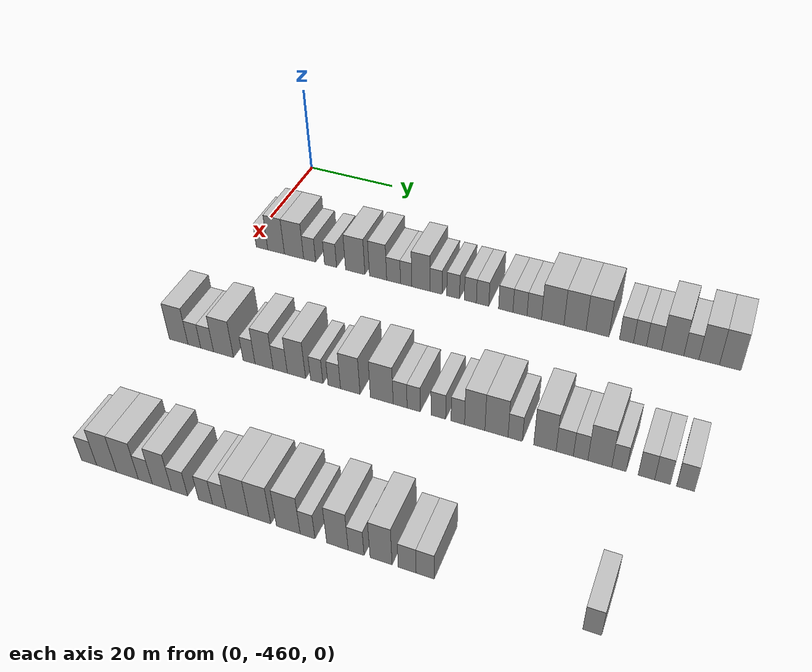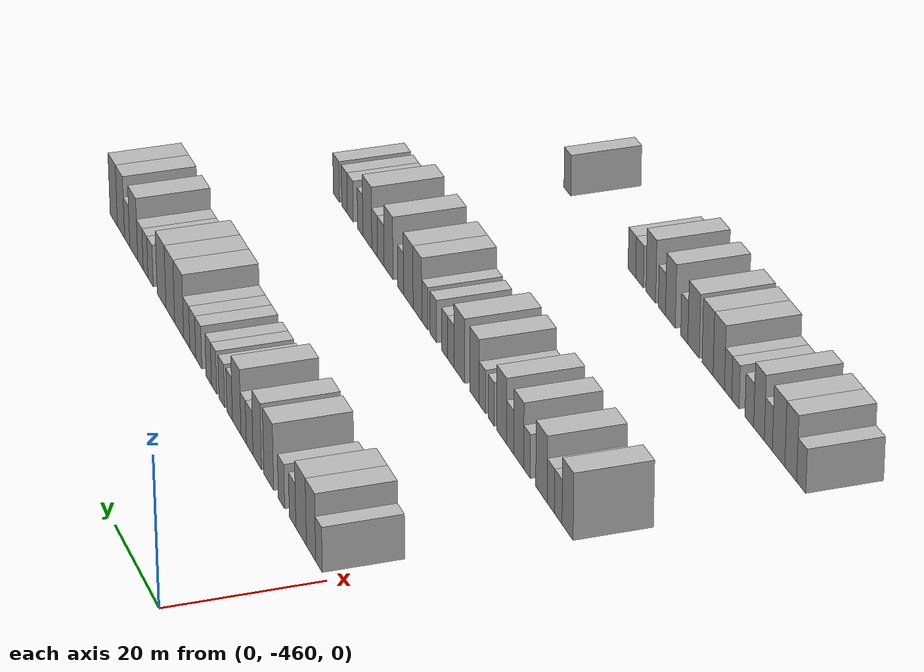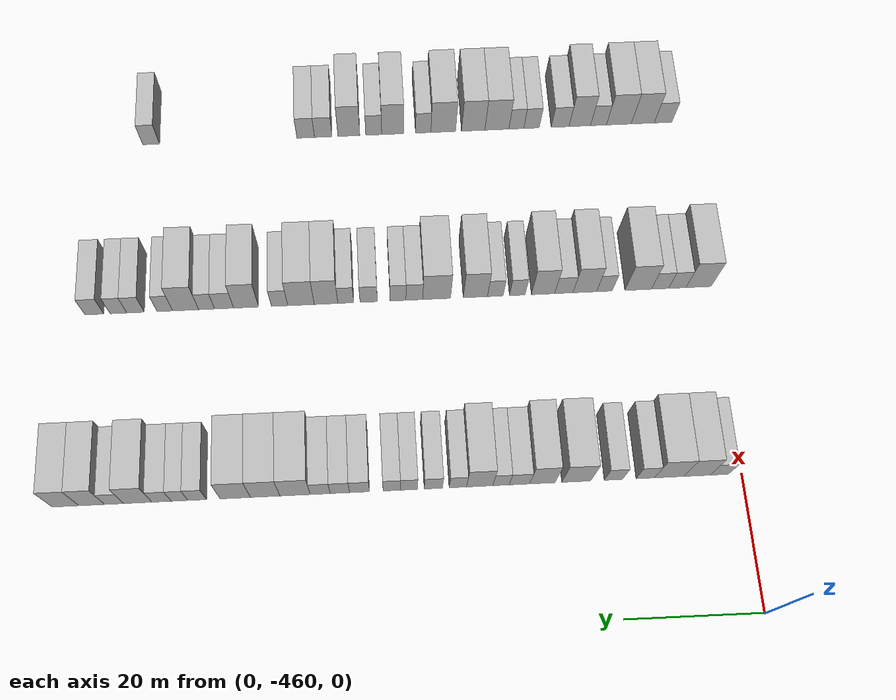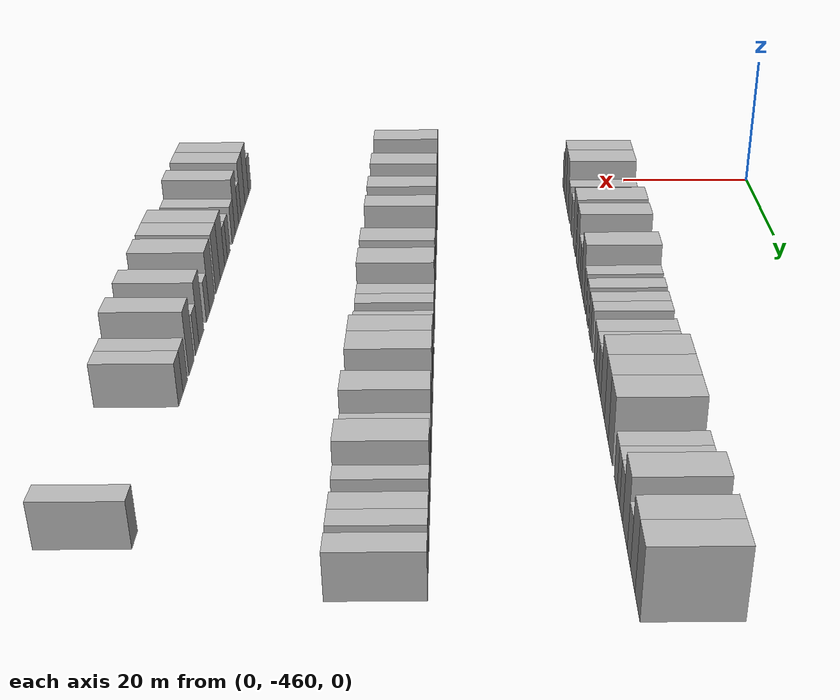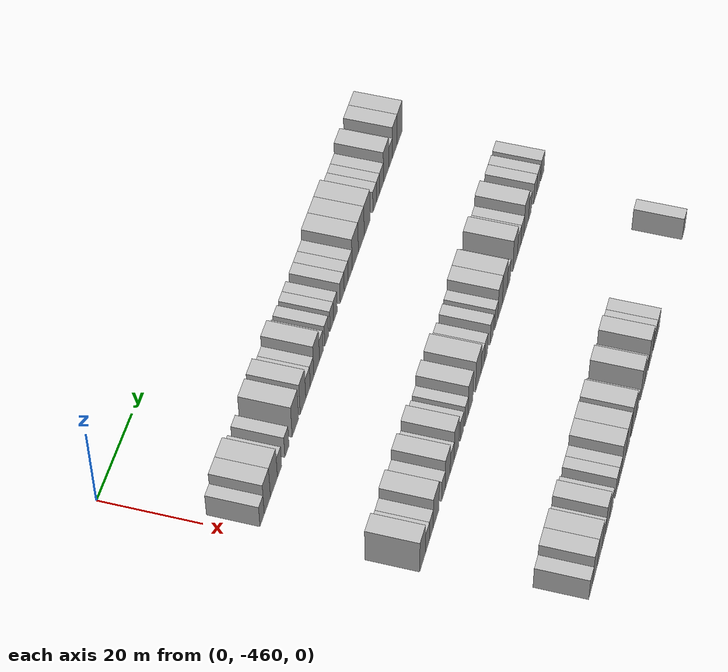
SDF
<sdf version="1.6">
 <world name="default">
  <model name="building_1">
   <static>1</static>
   <pose>25.0000 -456.6564 0 0.000000 0.000000 0.000000</pose>
   <link name="link">
    <pose>0 0 3.00 0 0 0</pose>
    <collision name="collision"><geometry><box><size>10.0000 2.6872 6.0000</size></box></geometry></collision>
    <visual name="visual">
     <cast_shadows>0</cast_shadows>
     <geometry><box><size>10.0000 2.6872 6.0000</size></box></geometry>
     <material>
      <script>
       <uri>model://HANNAS_wall/materials/scripts</uri>
       <uri>model://HANNAS_wall/materials/textures</uri>
       <name>vrc/HANNAS_wall</name>
      </script>
     </material>
    </visual>
   </link>
  </model>
  <model name="building_2">
   <static>1</static>
   <pose>25.0000 -453.3822 0 0.000000 0.000000 0.000000</pose>
   <link name="link">
    <pose>0 0 4.50 0 0 0</pose>
    <collision name="collision"><geometry><box><size>10.0000 3.8613 9.0000</size></box></geometry></collision>
    <visual name="visual">
     <cast_shadows>0</cast_shadows>
     <geometry><box><size>10.0000 3.8613 9.0000</size></box></geometry>
     <material>
      <script>
       <uri>model://HANNAS_wall/materials/scripts</uri>
       <uri>model://HANNAS_wall/materials/textures</uri>
       <name>vrc/HANNAS_wall</name>
      </script>
     </material>
    </visual>
   </link>
  </model>
  <model name="building_3">
   <static>1</static>
   <pose>25.0000 -449.2479 0 0.000000 0.000000 0.000000</pose>
   <link name="link">
    <pose>0 0 4.50 0 0 0</pose>
    <collision name="collision"><geometry><box><size>10.0000 4.4073 9.0000</size></box></geometry></collision>
    <visual name="visual">
     <cast_shadows>0</cast_shadows>
     <geometry><box><size>10.0000 4.4073 9.0000</size></box></geometry>
     <material>
      <script>
       <uri>model://HANNAS_wall/materials/scripts</uri>
       <uri>model://HANNAS_wall/materials/textures</uri>
       <name>vrc/HANNAS_wall</name>
      </script>
     </material>
    </visual>
   </link>
  </model>
  <model name="building_4">
   <static>1</static>
   <pose>25.0000 -445.6786 0 0.000000 0.000000 0.000000</pose>
   <link name="link">
    <pose>0 0 3.00 0 0 0</pose>
    <collision name="collision"><geometry><box><size>10.0000 2.7313 6.0000</size></box></geometry></collision>
    <visual name="visual">
     <cast_shadows>0</cast_shadows>
     <geometry><box><size>10.0000 2.7313 6.0000</size></box></geometry>
     <material>
      <script>
       <uri>model://HANNAS_wall/materials/scripts</uri>
       <uri>model://HANNAS_wall/materials/textures</uri>
       <name>vrc/HANNAS_wall</name>
      </script>
     </material>
    </visual>
   </link>
  </model>
  <model name="building_5">
   <static>1</static>
   <pose>25.0000 -440.9629 0 0.000000 0.000000 0.000000</pose>
   <link name="link">
    <pose>0 0 3.00 0 0 0</pose>
    <collision name="collision"><geometry><box><size>10.0000 2.7001 6.0000</size></box></geometry></collision>
    <visual name="visual">
     <cast_shadows>0</cast_shadows>
     <geometry><box><size>10.0000 2.7001 6.0000</size></box></geometry>
     <material>
      <script>
       <uri>model://HANNAS_wall/materials/scripts</uri>
       <uri>model://HANNAS_wall/materials/textures</uri>
       <name>vrc/HANNAS_wall</name>
      </script>
     </material>
    </visual>
   </link>
  </model>
  <model name="building_6">
   <static>1</static>
   <pose>25.0000 -435.4738 0 0.000000 0.000000 0.000000</pose>
   <link name="link">
    <pose>0 0 4.50 0 0 0</pose>
    <collision name="collision"><geometry><box><size>10.0000 4.2782 9.0000</size></box></geometry></collision>
    <visual name="visual">
     <cast_shadows>0</cast_shadows>
     <geometry><box><size>10.0000 4.2782 9.0000</size></box></geometry>
     <material>
      <script>
       <uri>model://HANNAS_wall/materials/scripts</uri>
       <uri>model://HANNAS_wall/materials/textures</uri>
       <name>vrc/HANNAS_wall</name>
      </script>
     </material>
    </visual>
   </link>
  </model>
  <model name="building_7">
   <static>1</static>
   <pose>25.0000 -430.4584 0 0.000000 0.000000 0.000000</pose>
   <link name="link">
    <pose>0 0 4.50 0 0 0</pose>
    <collision name="collision"><geometry><box><size>10.0000 3.7526 9.0000</size></box></geometry></collision>
    <visual name="visual">
     <cast_shadows>0</cast_shadows>
     <geometry><box><size>10.0000 3.7526 9.0000</size></box></geometry>
     <material>
      <script>
       <uri>model://HANNAS_wall/materials/scripts</uri>
       <uri>model://HANNAS_wall/materials/textures</uri>
       <name>vrc/HANNAS_wall</name>
      </script>
     </material>
    </visual>
   </link>
  </model>
  <model name="building_8">
   <static>1</static>
   <pose>25.0000 -427.0855 0 0.000000 0.000000 0.000000</pose>
   <link name="link">
    <pose>0 0 3.00 0 0 0</pose>
    <collision name="collision"><geometry><box><size>10.0000 2.9931 6.0000</size></box></geometry></collision>
    <visual name="visual">
     <cast_shadows>0</cast_shadows>
     <geometry><box><size>10.0000 2.9931 6.0000</size></box></geometry>
     <material>
      <script>
       <uri>model://HANNAS_wall/materials/scripts</uri>
       <uri>model://HANNAS_wall/materials/textures</uri>
       <name>vrc/HANNAS_wall</name>
      </script>
     </material>
    </visual>
   </link>
  </model>
  <model name="building_9">
   <static>1</static>
   <pose>25.0000 -424.3792 0 0.000000 0.000000 0.000000</pose>
   <link name="link">
    <pose>0 0 3.00 0 0 0</pose>
    <collision name="collision"><geometry><box><size>10.0000 2.4194 6.0000</size></box></geometry></collision>
    <visual name="visual">
     <cast_shadows>0</cast_shadows>
     <geometry><box><size>10.0000 2.4194 6.0000</size></box></geometry>
     <material>
      <script>
       <uri>model://HANNAS_wall/materials/scripts</uri>
       <uri>model://HANNAS_wall/materials/textures</uri>
       <name>vrc/HANNAS_wall</name>
      </script>
     </material>
    </visual>
   </link>
  </model>
  <model name="building_10">
   <static>1</static>
   <pose>25.0000 -421.2314 0 0.000000 0.000000 0.000000</pose>
   <link name="link">
    <pose>0 0 4.50 0 0 0</pose>
    <collision name="collision"><geometry><box><size>10.0000 3.8762 9.0000</size></box></geometry></collision>
    <visual name="visual">
     <cast_shadows>0</cast_shadows>
     <geometry><box><size>10.0000 3.8762 9.0000</size></box></geometry>
     <material>
      <script>
       <uri>model://HANNAS_wall/materials/scripts</uri>
       <uri>model://HANNAS_wall/materials/textures</uri>
       <name>vrc/HANNAS_wall</name>
      </script>
     </material>
    </visual>
   </link>
  </model>
  <model name="building_11">
   <static>1</static>
   <pose>25.0000 -418.0256 0 0.000000 0.000000 0.000000</pose>
   <link name="link">
    <pose>0 0 3.00 0 0 0</pose>
    <collision name="collision"><geometry><box><size>10.0000 2.5354 6.0000</size></box></geometry></collision>
    <visual name="visual">
     <cast_shadows>0</cast_shadows>
     <geometry><box><size>10.0000 2.5354 6.0000</size></box></geometry>
     <material>
      <script>
       <uri>model://HANNAS_wall/materials/scripts</uri>
       <uri>model://HANNAS_wall/materials/textures</uri>
       <name>vrc/HANNAS_wall</name>
      </script>
     </material>
    </visual>
   </link>
  </model>
  <model name="building_12">
   <static>1</static>
   <pose>25.0000 -414.4273 0 0.000000 0.000000 0.000000</pose>
   <link name="link">
    <pose>0 0 3.00 0 0 0</pose>
    <collision name="collision"><geometry><box><size>10.0000 2.6613 6.0000</size></box></geometry></collision>
    <visual name="visual">
     <cast_shadows>0</cast_shadows>
     <geometry><box><size>10.0000 2.6613 6.0000</size></box></geometry>
     <material>
      <script>
       <uri>model://HANNAS_wall/materials/scripts</uri>
       <uri>model://HANNAS_wall/materials/textures</uri>
       <name>vrc/HANNAS_wall</name>
      </script>
     </material>
    </visual>
   </link>
  </model>
  <model name="building_13">
   <static>1</static>
   <pose>25.0000 -410.8534 0 0.000000 0.000000 0.000000</pose>
   <link name="link">
    <pose>0 0 3.00 0 0 0</pose>
    <collision name="collision"><geometry><box><size>10.0000 2.4866 6.0000</size></box></geometry></collision>
    <visual name="visual">
     <cast_shadows>0</cast_shadows>
     <geometry><box><size>10.0000 2.4866 6.0000</size></box></geometry>
     <material>
      <script>
       <uri>model://HANNAS_wall/materials/scripts</uri>
       <uri>model://HANNAS_wall/materials/textures</uri>
       <name>vrc/HANNAS_wall</name>
      </script>
     </material>
    </visual>
   </link>
  </model>
  <model name="building_14">
   <static>1</static>
   <pose>25.0000 -408.3396 0 0.000000 0.000000 0.000000</pose>
   <link name="link">
    <pose>0 0 3.00 0 0 0</pose>
    <collision name="collision"><geometry><box><size>10.0000 2.5410 6.0000</size></box></geometry></collision>
    <visual name="visual">
     <cast_shadows>0</cast_shadows>
     <geometry><box><size>10.0000 2.5410 6.0000</size></box></geometry>
     <material>
      <script>
       <uri>model://HANNAS_wall/materials/scripts</uri>
       <uri>model://HANNAS_wall/materials/textures</uri>
       <name>vrc/HANNAS_wall</name>
      </script>
     </material>
    </visual>
   </link>
  </model>
  <model name="building_15">
   <static>1</static>
   <pose>25.0000 -403.6164 0 0.000000 0.000000 0.000000</pose>
   <link name="link">
    <pose>0 0 3.00 0 0 0</pose>
    <collision name="collision"><geometry><box><size>10.0000 2.9055 6.0000</size></box></geometry></collision>
    <visual name="visual">
     <cast_shadows>0</cast_shadows>
     <geometry><box><size>10.0000 2.9055 6.0000</size></box></geometry>
     <material>
      <script>
       <uri>model://HANNAS_wall/materials/scripts</uri>
       <uri>model://HANNAS_wall/materials/textures</uri>
       <name>vrc/HANNAS_wall</name>
      </script>
     </material>
    </visual>
   </link>
  </model>
  <model name="building_16">
   <static>1</static>
   <pose>25.0000 -400.7465 0 0.000000 0.000000 0.000000</pose>
   <link name="link">
    <pose>0 0 3.00 0 0 0</pose>
    <collision name="collision"><geometry><box><size>10.0000 2.8342 6.0000</size></box></geometry></collision>
    <visual name="visual">
     <cast_shadows>0</cast_shadows>
     <geometry><box><size>10.0000 2.8342 6.0000</size></box></geometry>
     <material>
      <script>
       <uri>model://HANNAS_wall/materials/scripts</uri>
       <uri>model://HANNAS_wall/materials/textures</uri>
       <name>vrc/HANNAS_wall</name>
      </script>
     </material>
    </visual>
   </link>
  </model>
  <model name="building_17">
   <static>1</static>
   <pose>25.0000 -397.8781 0 0.000000 0.000000 0.000000</pose>
   <link name="link">
    <pose>0 0 3.00 0 0 0</pose>
    <collision name="collision"><geometry><box><size>10.0000 2.9028 6.0000</size></box></geometry></collision>
    <visual name="visual">
     <cast_shadows>0</cast_shadows>
     <geometry><box><size>10.0000 2.9028 6.0000</size></box></geometry>
     <material>
      <script>
       <uri>model://HANNAS_wall/materials/scripts</uri>
       <uri>model://HANNAS_wall/materials/textures</uri>
       <name>vrc/HANNAS_wall</name>
      </script>
     </material>
    </visual>
   </link>
  </model>
  <model name="building_18">
   <static>1</static>
   <pose>25.0000 -394.2072 0 0.000000 0.000000 0.000000</pose>
   <link name="link">
    <pose>0 0 4.50 0 0 0</pose>
    <collision name="collision"><geometry><box><size>10.0000 4.4391 9.0000</size></box></geometry></collision>
    <visual name="visual">
     <cast_shadows>0</cast_shadows>
     <geometry><box><size>10.0000 4.4391 9.0000</size></box></geometry>
     <material>
      <script>
       <uri>model://HANNAS_wall/materials/scripts</uri>
       <uri>model://HANNAS_wall/materials/textures</uri>
       <name>vrc/HANNAS_wall</name>
      </script>
     </material>
    </visual>
   </link>
  </model>
  <model name="building_19">
   <static>1</static>
   <pose>25.0000 -389.8384 0 0.000000 0.000000 0.000000</pose>
   <link name="link">
    <pose>0 0 4.50 0 0 0</pose>
    <collision name="collision"><geometry><box><size>10.0000 4.2985 9.0000</size></box></geometry></collision>
    <visual name="visual">
     <cast_shadows>0</cast_shadows>
     <geometry><box><size>10.0000 4.2985 9.0000</size></box></geometry>
     <material>
      <script>
       <uri>model://HANNAS_wall/materials/scripts</uri>
       <uri>model://HANNAS_wall/materials/textures</uri>
       <name>vrc/HANNAS_wall</name>
      </script>
     </material>
    </visual>
   </link>
  </model>
  <model name="building_20">
   <static>1</static>
   <pose>25.0000 -385.4774 0 0.000000 0.000000 0.000000</pose>
   <link name="link">
    <pose>0 0 4.50 0 0 0</pose>
    <collision name="collision"><geometry><box><size>10.0000 4.4234 9.0000</size></box></geometry></collision>
    <visual name="visual">
     <cast_shadows>0</cast_shadows>
     <geometry><box><size>10.0000 4.4234 9.0000</size></box></geometry>
     <material>
      <script>
       <uri>model://HANNAS_wall/materials/scripts</uri>
       <uri>model://HANNAS_wall/materials/textures</uri>
       <name>vrc/HANNAS_wall</name>
      </script>
     </material>
    </visual>
   </link>
  </model>
  <model name="building_21">
   <static>1</static>
   <pose>25.0000 -379.9228 0 0.000000 0.000000 0.000000</pose>
   <link name="link">
    <pose>0 0 3.00 0 0 0</pose>
    <collision name="collision"><geometry><box><size>10.0000 2.6857 6.0000</size></box></geometry></collision>
    <visual name="visual">
     <cast_shadows>0</cast_shadows>
     <geometry><box><size>10.0000 2.6857 6.0000</size></box></geometry>
     <material>
      <script>
       <uri>model://HANNAS_wall/materials/scripts</uri>
       <uri>model://HANNAS_wall/materials/textures</uri>
       <name>vrc/HANNAS_wall</name>
      </script>
     </material>
    </visual>
   </link>
  </model>
  <model name="building_22">
   <static>1</static>
   <pose>25.0000 -377.3635 0 0.000000 0.000000 0.000000</pose>
   <link name="link">
    <pose>0 0 3.00 0 0 0</pose>
    <collision name="collision"><geometry><box><size>10.0000 2.4329 6.0000</size></box></geometry></collision>
    <visual name="visual">
     <cast_shadows>0</cast_shadows>
     <geometry><box><size>10.0000 2.4329 6.0000</size></box></geometry>
     <material>
      <script>
       <uri>model://HANNAS_wall/materials/scripts</uri>
       <uri>model://HANNAS_wall/materials/textures</uri>
       <name>vrc/HANNAS_wall</name>
      </script>
     </material>
    </visual>
   </link>
  </model>
  <model name="building_23">
   <static>1</static>
   <pose>25.0000 -374.7342 0 0.000000 0.000000 0.000000</pose>
   <link name="link">
    <pose>0 0 3.00 0 0 0</pose>
    <collision name="collision"><geometry><box><size>10.0000 2.8256 6.0000</size></box></geometry></collision>
    <visual name="visual">
     <cast_shadows>0</cast_shadows>
     <geometry><box><size>10.0000 2.8256 6.0000</size></box></geometry>
     <material>
      <script>
       <uri>model://HANNAS_wall/materials/scripts</uri>
       <uri>model://HANNAS_wall/materials/textures</uri>
       <name>vrc/HANNAS_wall</name>
      </script>
     </material>
    </visual>
   </link>
  </model>
  <model name="building_24">
   <static>1</static>
   <pose>25.0000 -371.2654 0 0.000000 0.000000 0.000000</pose>
   <link name="link">
    <pose>0 0 4.50 0 0 0</pose>
    <collision name="collision"><geometry><box><size>10.0000 4.1121 9.0000</size></box></geometry></collision>
    <visual name="visual">
     <cast_shadows>0</cast_shadows>
     <geometry><box><size>10.0000 4.1121 9.0000</size></box></geometry>
     <material>
      <script>
       <uri>model://HANNAS_wall/materials/scripts</uri>
       <uri>model://HANNAS_wall/materials/textures</uri>
       <name>vrc/HANNAS_wall</name>
      </script>
     </material>
    </visual>
   </link>
  </model>
  <model name="building_25">
   <static>1</static>
   <pose>25.0000 -367.8221 0 0.000000 0.000000 0.000000</pose>
   <link name="link">
    <pose>0 0 3.00 0 0 0</pose>
    <collision name="collision"><geometry><box><size>10.0000 2.7745 6.0000</size></box></geometry></collision>
    <visual name="visual">
     <cast_shadows>0</cast_shadows>
     <geometry><box><size>10.0000 2.7745 6.0000</size></box></geometry>
     <material>
      <script>
       <uri>model://HANNAS_wall/materials/scripts</uri>
       <uri>model://HANNAS_wall/materials/textures</uri>
       <name>vrc/HANNAS_wall</name>
      </script>
     </material>
    </visual>
   </link>
  </model>
  <model name="building_26">
   <static>1</static>
   <pose>25.0000 -364.5692 0 0.000000 0.000000 0.000000</pose>
   <link name="link">
    <pose>0 0 4.50 0 0 0</pose>
    <collision name="collision"><geometry><box><size>10.0000 3.7311 9.0000</size></box></geometry></collision>
    <visual name="visual">
     <cast_shadows>0</cast_shadows>
     <geometry><box><size>10.0000 3.7311 9.0000</size></box></geometry>
     <material>
      <script>
       <uri>model://HANNAS_wall/materials/scripts</uri>
       <uri>model://HANNAS_wall/materials/textures</uri>
       <name>vrc/HANNAS_wall</name>
      </script>
     </material>
    </visual>
   </link>
  </model>
  <model name="building_27">
   <static>1</static>
   <pose>25.0000 -360.7583 0 0.000000 0.000000 0.000000</pose>
   <link name="link">
    <pose>0 0 4.50 0 0 0</pose>
    <collision name="collision"><geometry><box><size>10.0000 3.8907 9.0000</size></box></geometry></collision>
    <visual name="visual">
     <cast_shadows>0</cast_shadows>
     <geometry><box><size>10.0000 3.8907 9.0000</size></box></geometry>
     <material>
      <script>
       <uri>model://HANNAS_wall/materials/scripts</uri>
       <uri>model://HANNAS_wall/materials/textures</uri>
       <name>vrc/HANNAS_wall</name>
      </script>
     </material>
    </visual>
   </link>
  </model>
  <model name="building_225">
   <static>1</static>
   <pose>55.0000 -458.0052 0 0.000000 0.000000 0.000000</pose>
   <link name="link">
    <pose>0 0 4.50 0 0 0</pose>
    <collision name="collision"><geometry><box><size>10.0000 3.9895 9.0000</size></box></geometry></collision>
    <visual name="visual">
     <cast_shadows>0</cast_shadows>
     <geometry><box><size>10.0000 3.9895 9.0000</size></box></geometry>
     <material>
      <script>
       <uri>model://HANNAS_wall/materials/scripts</uri>
       <uri>model://HANNAS_wall/materials/textures</uri>
       <name>vrc/HANNAS_wall</name>
      </script>
     </material>
    </visual>
   </link>
  </model>
  <model name="building_226">
   <static>1</static>
   <pose>55.0000 -454.6438 0 0.000000 0.000000 0.000000</pose>
   <link name="link">
    <pose>0 0 3.00 0 0 0</pose>
    <collision name="collision"><geometry><box><size>10.0000 2.7334 6.0000</size></box></geometry></collision>
    <visual name="visual">
     <cast_shadows>0</cast_shadows>
     <geometry><box><size>10.0000 2.7334 6.0000</size></box></geometry>
     <material>
      <script>
       <uri>model://HANNAS_wall/materials/scripts</uri>
       <uri>model://HANNAS_wall/materials/textures</uri>
       <name>vrc/HANNAS_wall</name>
      </script>
     </material>
    </visual>
   </link>
  </model>
  <model name="building_227">
   <static>1</static>
   <pose>55.0000 -451.9200 0 0.000000 0.000000 0.000000</pose>
   <link name="link">
    <pose>0 0 3.00 0 0 0</pose>
    <collision name="collision"><geometry><box><size>10.0000 2.7142 6.0000</size></box></geometry></collision>
    <visual name="visual">
     <cast_shadows>0</cast_shadows>
     <geometry><box><size>10.0000 2.7142 6.0000</size></box></geometry>
     <material>
      <script>
       <uri>model://HANNAS_wall/materials/scripts</uri>
       <uri>model://HANNAS_wall/materials/textures</uri>
       <name>vrc/HANNAS_wall</name>
      </script>
     </material>
    </visual>
   </link>
  </model>
  <model name="building_228">
   <static>1</static>
   <pose>55.0000 -448.4699 0 0.000000 0.000000 0.000000</pose>
   <link name="link">
    <pose>0 0 4.50 0 0 0</pose>
    <collision name="collision"><geometry><box><size>10.0000 4.1859 9.0000</size></box></geometry></collision>
    <visual name="visual">
     <cast_shadows>0</cast_shadows>
     <geometry><box><size>10.0000 4.1859 9.0000</size></box></geometry>
     <material>
      <script>
       <uri>model://HANNAS_wall/materials/scripts</uri>
       <uri>model://HANNAS_wall/materials/textures</uri>
       <name>vrc/HANNAS_wall</name>
      </script>
     </material>
    </visual>
   </link>
  </model>
  <model name="building_229">
   <static>1</static>
   <pose>55.0000 -443.1403 0 0.000000 0.000000 0.000000</pose>
   <link name="link">
    <pose>0 0 3.00 0 0 0</pose>
    <collision name="collision"><geometry><box><size>10.0000 2.4733 6.0000</size></box></geometry></collision>
    <visual name="visual">
     <cast_shadows>0</cast_shadows>
     <geometry><box><size>10.0000 2.4733 6.0000</size></box></geometry>
     <material>
      <script>
       <uri>model://HANNAS_wall/materials/scripts</uri>
       <uri>model://HANNAS_wall/materials/textures</uri>
       <name>vrc/HANNAS_wall</name>
      </script>
     </material>
    </visual>
   </link>
  </model>
  <model name="building_230">
   <static>1</static>
   <pose>55.0000 -440.0415 0 0.000000 0.000000 0.000000</pose>
   <link name="link">
    <pose>0 0 4.50 0 0 0</pose>
    <collision name="collision"><geometry><box><size>10.0000 3.7244 9.0000</size></box></geometry></collision>
    <visual name="visual">
     <cast_shadows>0</cast_shadows>
     <geometry><box><size>10.0000 3.7244 9.0000</size></box></geometry>
     <material>
      <script>
       <uri>model://HANNAS_wall/materials/scripts</uri>
       <uri>model://HANNAS_wall/materials/textures</uri>
       <name>vrc/HANNAS_wall</name>
      </script>
     </material>
    </visual>
   </link>
  </model>
  <model name="building_231">
   <static>1</static>
   <pose>55.0000 -436.7458 0 0.000000 0.000000 0.000000</pose>
   <link name="link">
    <pose>0 0 3.00 0 0 0</pose>
    <collision name="collision"><geometry><box><size>10.0000 2.8670 6.0000</size></box></geometry></collision>
    <visual name="visual">
     <cast_shadows>0</cast_shadows>
     <geometry><box><size>10.0000 2.8670 6.0000</size></box></geometry>
     <material>
      <script>
       <uri>model://HANNAS_wall/materials/scripts</uri>
       <uri>model://HANNAS_wall/materials/textures</uri>
       <name>vrc/HANNAS_wall</name>
      </script>
     </material>
    </visual>
   </link>
  </model>
  <model name="building_232">
   <static>1</static>
   <pose>55.0000 -433.4737 0 0.000000 0.000000 0.000000</pose>
   <link name="link">
    <pose>0 0 4.50 0 0 0</pose>
    <collision name="collision"><geometry><box><size>10.0000 3.6772 9.0000</size></box></geometry></collision>
    <visual name="visual">
     <cast_shadows>0</cast_shadows>
     <geometry><box><size>10.0000 3.6772 9.0000</size></box></geometry>
     <material>
      <script>
       <uri>model://HANNAS_wall/materials/scripts</uri>
       <uri>model://HANNAS_wall/materials/textures</uri>
       <name>vrc/HANNAS_wall</name>
      </script>
     </material>
    </visual>
   </link>
  </model>
  <model name="building_233">
   <static>1</static>
   <pose>55.0000 -429.4086 0 0.000000 0.000000 0.000000</pose>
   <link name="link">
    <pose>0 0 3.00 0 0 0</pose>
    <collision name="collision"><geometry><box><size>10.0000 2.4528 6.0000</size></box></geometry></collision>
    <visual name="visual">
     <cast_shadows>0</cast_shadows>
     <geometry><box><size>10.0000 2.4528 6.0000</size></box></geometry>
     <material>
      <script>
       <uri>model://HANNAS_wall/materials/scripts</uri>
       <uri>model://HANNAS_wall/materials/textures</uri>
       <name>vrc/HANNAS_wall</name>
      </script>
     </material>
    </visual>
   </link>
  </model>
  <model name="building_234">
   <static>1</static>
   <pose>55.0000 -425.9555 0 0.000000 0.000000 0.000000</pose>
   <link name="link">
    <pose>0 0 3.00 0 0 0</pose>
    <collision name="collision"><geometry><box><size>10.0000 2.4535 6.0000</size></box></geometry></collision>
    <visual name="visual">
     <cast_shadows>0</cast_shadows>
     <geometry><box><size>10.0000 2.4535 6.0000</size></box></geometry>
     <material>
      <script>
       <uri>model://HANNAS_wall/materials/scripts</uri>
       <uri>model://HANNAS_wall/materials/textures</uri>
       <name>vrc/HANNAS_wall</name>
      </script>
     </material>
    </visual>
   </link>
  </model>
  <model name="building_235">
   <static>1</static>
   <pose>55.0000 -422.8257 0 0.000000 0.000000 0.000000</pose>
   <link name="link">
    <pose>0 0 4.50 0 0 0</pose>
    <collision name="collision"><geometry><box><size>10.0000 3.8059 9.0000</size></box></geometry></collision>
    <visual name="visual">
     <cast_shadows>0</cast_shadows>
     <geometry><box><size>10.0000 3.8059 9.0000</size></box></geometry>
     <material>
      <script>
       <uri>model://HANNAS_wall/materials/scripts</uri>
       <uri>model://HANNAS_wall/materials/textures</uri>
       <name>vrc/HANNAS_wall</name>
      </script>
     </material>
    </visual>
   </link>
  </model>
  <model name="building_236">
   <static>1</static>
   <pose>55.0000 -416.7457 0 0.000000 0.000000 0.000000</pose>
   <link name="link">
    <pose>0 0 4.50 0 0 0</pose>
    <collision name="collision"><geometry><box><size>10.0000 4.3542 9.0000</size></box></geometry></collision>
    <visual name="visual">
     <cast_shadows>0</cast_shadows>
     <geometry><box><size>10.0000 4.3542 9.0000</size></box></geometry>
     <material>
      <script>
       <uri>model://HANNAS_wall/materials/scripts</uri>
       <uri>model://HANNAS_wall/materials/textures</uri>
       <name>vrc/HANNAS_wall</name>
      </script>
     </material>
    </visual>
   </link>
  </model>
  <model name="building_237">
   <static>1</static>
   <pose>55.0000 -413.2552 0 0.000000 0.000000 0.000000</pose>
   <link name="link">
    <pose>0 0 3.00 0 0 0</pose>
    <collision name="collision"><geometry><box><size>10.0000 2.6268 6.0000</size></box></geometry></collision>
    <visual name="visual">
     <cast_shadows>0</cast_shadows>
     <geometry><box><size>10.0000 2.6268 6.0000</size></box></geometry>
     <material>
      <script>
       <uri>model://HANNAS_wall/materials/scripts</uri>
       <uri>model://HANNAS_wall/materials/textures</uri>
       <name>vrc/HANNAS_wall</name>
      </script>
     </material>
    </visual>
   </link>
  </model>
  <model name="building_238">
   <static>1</static>
   <pose>55.0000 -410.7061 0 0.000000 0.000000 0.000000</pose>
   <link name="link">
    <pose>0 0 3.00 0 0 0</pose>
    <collision name="collision"><geometry><box><size>10.0000 2.4715 6.0000</size></box></geometry></collision>
    <visual name="visual">
     <cast_shadows>0</cast_shadows>
     <geometry><box><size>10.0000 2.4715 6.0000</size></box></geometry>
     <material>
      <script>
       <uri>model://HANNAS_wall/materials/scripts</uri>
       <uri>model://HANNAS_wall/materials/textures</uri>
       <name>vrc/HANNAS_wall</name>
      </script>
     </material>
    </visual>
   </link>
  </model>
  <model name="building_239">
   <static>1</static>
   <pose>55.0000 -406.1147 0 0.000000 0.000000 0.000000</pose>
   <link name="link">
    <pose>0 0 3.00 0 0 0</pose>
    <collision name="collision"><geometry><box><size>10.0000 2.7112 6.0000</size></box></geometry></collision>
    <visual name="visual">
     <cast_shadows>0</cast_shadows>
     <geometry><box><size>10.0000 2.7112 6.0000</size></box></geometry>
     <material>
      <script>
       <uri>model://HANNAS_wall/materials/scripts</uri>
       <uri>model://HANNAS_wall/materials/textures</uri>
       <name>vrc/HANNAS_wall</name>
      </script>
     </material>
    </visual>
   </link>
  </model>
  <model name="building_240">
   <static>1</static>
   <pose>55.0000 -402.5209 0 0.000000 0.000000 0.000000</pose>
   <link name="link">
    <pose>0 0 3.00 0 0 0</pose>
    <collision name="collision"><geometry><box><size>10.0000 2.4764 6.0000</size></box></geometry></collision>
    <visual name="visual">
     <cast_shadows>0</cast_shadows>
     <geometry><box><size>10.0000 2.4764 6.0000</size></box></geometry>
     <material>
      <script>
       <uri>model://HANNAS_wall/materials/scripts</uri>
       <uri>model://HANNAS_wall/materials/textures</uri>
       <name>vrc/HANNAS_wall</name>
      </script>
     </material>
    </visual>
   </link>
  </model>
  <model name="building_241">
   <static>1</static>
   <pose>55.0000 -399.4414 0 0.000000 0.000000 0.000000</pose>
   <link name="link">
    <pose>0 0 4.50 0 0 0</pose>
    <collision name="collision"><geometry><box><size>10.0000 3.6826 9.0000</size></box></geometry></collision>
    <visual name="visual">
     <cast_shadows>0</cast_shadows>
     <geometry><box><size>10.0000 3.6826 9.0000</size></box></geometry>
     <material>
      <script>
       <uri>model://HANNAS_wall/materials/scripts</uri>
       <uri>model://HANNAS_wall/materials/textures</uri>
       <name>vrc/HANNAS_wall</name>
      </script>
     </material>
    </visual>
   </link>
  </model>
  <model name="building_242">
   <static>1</static>
   <pose>55.0000 -395.5350 0 0.000000 0.000000 0.000000</pose>
   <link name="link">
    <pose>0 0 4.50 0 0 0</pose>
    <collision name="collision"><geometry><box><size>10.0000 4.1301 9.0000</size></box></geometry></collision>
    <visual name="visual">
     <cast_shadows>0</cast_shadows>
     <geometry><box><size>10.0000 4.1301 9.0000</size></box></geometry>
     <material>
      <script>
       <uri>model://HANNAS_wall/materials/scripts</uri>
       <uri>model://HANNAS_wall/materials/textures</uri>
       <name>vrc/HANNAS_wall</name>
      </script>
     </material>
    </visual>
   </link>
  </model>
  <model name="building_243">
   <static>1</static>
   <pose>55.0000 -392.1960 0 0.000000 0.000000 0.000000</pose>
   <link name="link">
    <pose>0 0 3.00 0 0 0</pose>
    <collision name="collision"><geometry><box><size>10.0000 2.5478 6.0000</size></box></geometry></collision>
    <visual name="visual">
     <cast_shadows>0</cast_shadows>
     <geometry><box><size>10.0000 2.5478 6.0000</size></box></geometry>
     <material>
      <script>
       <uri>model://HANNAS_wall/materials/scripts</uri>
       <uri>model://HANNAS_wall/materials/textures</uri>
       <name>vrc/HANNAS_wall</name>
      </script>
     </material>
    </visual>
   </link>
  </model>
  <model name="building_244">
   <static>1</static>
   <pose>55.0000 -386.9693 0 0.000000 0.000000 0.000000</pose>
   <link name="link">
    <pose>0 0 4.50 0 0 0</pose>
    <collision name="collision"><geometry><box><size>10.0000 3.9057 9.0000</size></box></geometry></collision>
    <visual name="visual">
     <cast_shadows>0</cast_shadows>
     <geometry><box><size>10.0000 3.9057 9.0000</size></box></geometry>
     <material>
      <script>
       <uri>model://HANNAS_wall/materials/scripts</uri>
       <uri>model://HANNAS_wall/materials/textures</uri>
       <name>vrc/HANNAS_wall</name>
      </script>
     </material>
    </visual>
   </link>
  </model>
  <model name="building_245">
   <static>1</static>
   <pose>55.0000 -383.5321 0 0.000000 0.000000 0.000000</pose>
   <link name="link">
    <pose>0 0 3.00 0 0 0</pose>
    <collision name="collision"><geometry><box><size>10.0000 2.9687 6.0000</size></box></geometry></collision>
    <visual name="visual">
     <cast_shadows>0</cast_shadows>
     <geometry><box><size>10.0000 2.9687 6.0000</size></box></geometry>
     <material>
      <script>
       <uri>model://HANNAS_wall/materials/scripts</uri>
       <uri>model://HANNAS_wall/materials/textures</uri>
       <name>vrc/HANNAS_wall</name>
      </script>
     </material>
    </visual>
   </link>
  </model>
  <model name="building_246">
   <static>1</static>
   <pose>55.0000 -380.8062 0 0.000000 0.000000 0.000000</pose>
   <link name="link">
    <pose>0 0 3.00 0 0 0</pose>
    <collision name="collision"><geometry><box><size>10.0000 2.4832 6.0000</size></box></geometry></collision>
    <visual name="visual">
     <cast_shadows>0</cast_shadows>
     <geometry><box><size>10.0000 2.4832 6.0000</size></box></geometry>
     <material>
      <script>
       <uri>model://HANNAS_wall/materials/scripts</uri>
       <uri>model://HANNAS_wall/materials/textures</uri>
       <name>vrc/HANNAS_wall</name>
      </script>
     </material>
    </visual>
   </link>
  </model>
  <model name="building_247">
   <static>1</static>
   <pose>55.0000 -377.5517 0 0.000000 0.000000 0.000000</pose>
   <link name="link">
    <pose>0 0 4.50 0 0 0</pose>
    <collision name="collision"><geometry><box><size>10.0000 4.0257 9.0000</size></box></geometry></collision>
    <visual name="visual">
     <cast_shadows>0</cast_shadows>
     <geometry><box><size>10.0000 4.0257 9.0000</size></box></geometry>
     <material>
      <script>
       <uri>model://HANNAS_wall/materials/scripts</uri>
       <uri>model://HANNAS_wall/materials/textures</uri>
       <name>vrc/HANNAS_wall</name>
      </script>
     </material>
    </visual>
   </link>
  </model>
  <model name="building_248">
   <static>1</static>
   <pose>55.0000 -374.3236 0 0.000000 0.000000 0.000000</pose>
   <link name="link">
    <pose>0 0 3.00 0 0 0</pose>
    <collision name="collision"><geometry><box><size>10.0000 2.4307 6.0000</size></box></geometry></collision>
    <visual name="visual">
     <cast_shadows>0</cast_shadows>
     <geometry><box><size>10.0000 2.4307 6.0000</size></box></geometry>
     <material>
      <script>
       <uri>model://HANNAS_wall/materials/scripts</uri>
       <uri>model://HANNAS_wall/materials/textures</uri>
       <name>vrc/HANNAS_wall</name>
      </script>
     </material>
    </visual>
   </link>
  </model>
  <model name="building_249">
   <static>1</static>
   <pose>55.0000 -369.7486 0 0.000000 0.000000 0.000000</pose>
   <link name="link">
    <pose>0 0 3.00 0 0 0</pose>
    <collision name="collision"><geometry><box><size>10.0000 2.7192 6.0000</size></box></geometry></collision>
    <visual name="visual">
     <cast_shadows>0</cast_shadows>
     <geometry><box><size>10.0000 2.7192 6.0000</size></box></geometry>
     <material>
      <script>
       <uri>model://HANNAS_wall/materials/scripts</uri>
       <uri>model://HANNAS_wall/materials/textures</uri>
       <name>vrc/HANNAS_wall</name>
      </script>
     </material>
    </visual>
   </link>
  </model>
  <model name="building_250">
   <static>1</static>
   <pose>55.0000 -367.1036 0 0.000000 0.000000 0.000000</pose>
   <link name="link">
    <pose>0 0 3.00 0 0 0</pose>
    <collision name="collision"><geometry><box><size>10.0000 2.5709 6.0000</size></box></geometry></collision>
    <visual name="visual">
     <cast_shadows>0</cast_shadows>
     <geometry><box><size>10.0000 2.5709 6.0000</size></box></geometry>
     <material>
      <script>
       <uri>model://HANNAS_wall/materials/scripts</uri>
       <uri>model://HANNAS_wall/materials/textures</uri>
       <name>vrc/HANNAS_wall</name>
      </script>
     </material>
    </visual>
   </link>
  </model>
  <model name="building_251">
   <static>1</static>
   <pose>55.0000 -363.3663 0 0.000000 0.000000 0.000000</pose>
   <link name="link">
    <pose>0 0 3.00 0 0 0</pose>
    <collision name="collision"><geometry><box><size>10.0000 2.9037 6.0000</size></box></geometry></collision>
    <visual name="visual">
     <cast_shadows>0</cast_shadows>
     <geometry><box><size>10.0000 2.9037 6.0000</size></box></geometry>
     <material>
      <script>
       <uri>model://HANNAS_wall/materials/scripts</uri>
       <uri>model://HANNAS_wall/materials/textures</uri>
       <name>vrc/HANNAS_wall</name>
      </script>
     </material>
    </visual>
   </link>
  </model>
  <model name="building_445">
   <static>1</static>
   <pose>85.0000 -456.5213 0 0.000000 0.000000 0.000000</pose>
   <link name="link">
    <pose>0 0 3.00 0 0 0</pose>
    <collision name="collision"><geometry><box><size>10.0000 2.9573 6.0000</size></box></geometry></collision>
    <visual name="visual">
     <cast_shadows>0</cast_shadows>
     <geometry><box><size>10.0000 2.9573 6.0000</size></box></geometry>
     <material>
      <script>
       <uri>model://HANNAS_wall/materials/scripts</uri>
       <uri>model://HANNAS_wall/materials/textures</uri>
       <name>vrc/HANNAS_wall</name>
      </script>
     </material>
    </visual>
   </link>
  </model>
  <model name="building_446">
   <static>1</static>
   <pose>85.0000 -453.0984 0 0.000000 0.000000 0.000000</pose>
   <link name="link">
    <pose>0 0 4.50 0 0 0</pose>
    <collision name="collision"><geometry><box><size>10.0000 3.8886 9.0000</size></box></geometry></collision>
    <visual name="visual">
     <cast_shadows>0</cast_shadows>
     <geometry><box><size>10.0000 3.8886 9.0000</size></box></geometry>
     <material>
      <script>
       <uri>model://HANNAS_wall/materials/scripts</uri>
       <uri>model://HANNAS_wall/materials/textures</uri>
       <name>vrc/HANNAS_wall</name>
      </script>
     </material>
    </visual>
   </link>
  </model>
  <model name="building_447">
   <static>1</static>
   <pose>85.0000 -449.0725 0 0.000000 0.000000 0.000000</pose>
   <link name="link">
    <pose>0 0 4.50 0 0 0</pose>
    <collision name="collision"><geometry><box><size>10.0000 4.1630 9.0000</size></box></geometry></collision>
    <visual name="visual">
     <cast_shadows>0</cast_shadows>
     <geometry><box><size>10.0000 4.1630 9.0000</size></box></geometry>
     <material>
      <script>
       <uri>model://HANNAS_wall/materials/scripts</uri>
       <uri>model://HANNAS_wall/materials/textures</uri>
       <name>vrc/HANNAS_wall</name>
      </script>
     </material>
    </visual>
   </link>
  </model>
  <model name="building_448">
   <static>1</static>
   <pose>85.0000 -445.6562 0 0.000000 0.000000 0.000000</pose>
   <link name="link">
    <pose>0 0 3.00 0 0 0</pose>
    <collision name="collision"><geometry><box><size>10.0000 2.6697 6.0000</size></box></geometry></collision>
    <visual name="visual">
     <cast_shadows>0</cast_shadows>
     <geometry><box><size>10.0000 2.6697 6.0000</size></box></geometry>
     <material>
      <script>
       <uri>model://HANNAS_wall/materials/scripts</uri>
       <uri>model://HANNAS_wall/materials/textures</uri>
       <name>vrc/HANNAS_wall</name>
      </script>
     </material>
    </visual>
   </link>
  </model>
  <model name="building_449">
   <static>1</static>
   <pose>85.0000 -442.5188 0 0.000000 0.000000 0.000000</pose>
   <link name="link">
    <pose>0 0 4.50 0 0 0</pose>
    <collision name="collision"><geometry><box><size>10.0000 3.6050 9.0000</size></box></geometry></collision>
    <visual name="visual">
     <cast_shadows>0</cast_shadows>
     <geometry><box><size>10.0000 3.6050 9.0000</size></box></geometry>
     <material>
      <script>
       <uri>model://HANNAS_wall/materials/scripts</uri>
       <uri>model://HANNAS_wall/materials/textures</uri>
       <name>vrc/HANNAS_wall</name>
      </script>
     </material>
    </visual>
   </link>
  </model>
  <model name="building_450">
   <static>1</static>
   <pose>85.0000 -439.2255 0 0.000000 0.000000 0.000000</pose>
   <link name="link">
    <pose>0 0 3.00 0 0 0</pose>
    <collision name="collision"><geometry><box><size>10.0000 2.9817 6.0000</size></box></geometry></collision>
    <visual name="visual">
     <cast_shadows>0</cast_shadows>
     <geometry><box><size>10.0000 2.9817 6.0000</size></box></geometry>
     <material>
      <script>
       <uri>model://HANNAS_wall/materials/scripts</uri>
       <uri>model://HANNAS_wall/materials/textures</uri>
       <name>vrc/HANNAS_wall</name>
      </script>
     </material>
    </visual>
   </link>
  </model>
  <model name="building_451">
   <static>1</static>
   <pose>85.0000 -434.4425 0 0.000000 0.000000 0.000000</pose>
   <link name="link">
    <pose>0 0 3.00 0 0 0</pose>
    <collision name="collision"><geometry><box><size>10.0000 2.5843 6.0000</size></box></geometry></collision>
    <visual name="visual">
     <cast_shadows>0</cast_shadows>
     <geometry><box><size>10.0000 2.5843 6.0000</size></box></geometry>
     <material>
      <script>
       <uri>model://HANNAS_wall/materials/scripts</uri>
       <uri>model://HANNAS_wall/materials/textures</uri>
       <name>vrc/HANNAS_wall</name>
      </script>
     </material>
    </visual>
   </link>
  </model>
  <model name="building_452">
   <static>1</static>
   <pose>85.0000 -431.9007 0 0.000000 0.000000 0.000000</pose>
   <link name="link">
    <pose>0 0 3.00 0 0 0</pose>
    <collision name="collision"><geometry><box><size>10.0000 2.4992 6.0000</size></box></geometry></collision>
    <visual name="visual">
     <cast_shadows>0</cast_shadows>
     <geometry><box><size>10.0000 2.4992 6.0000</size></box></geometry>
     <material>
      <script>
       <uri>model://HANNAS_wall/materials/scripts</uri>
       <uri>model://HANNAS_wall/materials/textures</uri>
       <name>vrc/HANNAS_wall</name>
      </script>
     </material>
    </visual>
   </link>
  </model>
  <model name="building_453">
   <static>1</static>
   <pose>85.0000 -428.6477 0 0.000000 0.000000 0.000000</pose>
   <link name="link">
    <pose>0 0 4.50 0 0 0</pose>
    <collision name="collision"><geometry><box><size>10.0000 4.0068 9.0000</size></box></geometry></collision>
    <visual name="visual">
     <cast_shadows>0</cast_shadows>
     <geometry><box><size>10.0000 4.0068 9.0000</size></box></geometry>
     <material>
      <script>
       <uri>model://HANNAS_wall/materials/scripts</uri>
       <uri>model://HANNAS_wall/materials/textures</uri>
       <name>vrc/HANNAS_wall</name>
      </script>
     </material>
    </visual>
   </link>
  </model>
  <model name="building_454">
   <static>1</static>
   <pose>85.0000 -424.6913 0 0.000000 0.000000 0.000000</pose>
   <link name="link">
    <pose>0 0 4.50 0 0 0</pose>
    <collision name="collision"><geometry><box><size>10.0000 3.9061 9.0000</size></box></geometry></collision>
    <visual name="visual">
     <cast_shadows>0</cast_shadows>
     <geometry><box><size>10.0000 3.9061 9.0000</size></box></geometry>
     <material>
      <script>
       <uri>model://HANNAS_wall/materials/scripts</uri>
       <uri>model://HANNAS_wall/materials/textures</uri>
       <name>vrc/HANNAS_wall</name>
      </script>
     </material>
    </visual>
   </link>
  </model>
  <model name="building_455">
   <static>1</static>
   <pose>85.0000 -419.6752 0 0.000000 0.000000 0.000000</pose>
   <link name="link">
    <pose>0 0 4.50 0 0 0</pose>
    <collision name="collision"><geometry><box><size>10.0000 4.1262 9.0000</size></box></geometry></collision>
    <visual name="visual">
     <cast_shadows>0</cast_shadows>
     <geometry><box><size>10.0000 4.1262 9.0000</size></box></geometry>
     <material>
      <script>
       <uri>model://HANNAS_wall/materials/scripts</uri>
       <uri>model://HANNAS_wall/materials/textures</uri>
       <name>vrc/HANNAS_wall</name>
      </script>
     </material>
    </visual>
   </link>
  </model>
  <model name="building_456">
   <static>1</static>
   <pose>85.0000 -416.3373 0 0.000000 0.000000 0.000000</pose>
   <link name="link">
    <pose>0 0 3.00 0 0 0</pose>
    <collision name="collision"><geometry><box><size>10.0000 2.5495 6.0000</size></box></geometry></collision>
    <visual name="visual">
     <cast_shadows>0</cast_shadows>
     <geometry><box><size>10.0000 2.5495 6.0000</size></box></geometry>
     <material>
      <script>
       <uri>model://HANNAS_wall/materials/scripts</uri>
       <uri>model://HANNAS_wall/materials/textures</uri>
       <name>vrc/HANNAS_wall</name>
      </script>
     </material>
    </visual>
   </link>
  </model>
  <model name="building_457">
   <static>1</static>
   <pose>85.0000 -411.2435 0 0.000000 0.000000 0.000000</pose>
   <link name="link">
    <pose>0 0 4.50 0 0 0</pose>
    <collision name="collision"><geometry><box><size>10.0000 3.6381 9.0000</size></box></geometry></collision>
    <visual name="visual">
     <cast_shadows>0</cast_shadows>
     <geometry><box><size>10.0000 3.6381 9.0000</size></box></geometry>
     <material>
      <script>
       <uri>model://HANNAS_wall/materials/scripts</uri>
       <uri>model://HANNAS_wall/materials/textures</uri>
       <name>vrc/HANNAS_wall</name>
      </script>
     </material>
    </visual>
   </link>
  </model>
  <model name="building_458">
   <static>1</static>
   <pose>85.0000 -408.1010 0 0.000000 0.000000 0.000000</pose>
   <link name="link">
    <pose>0 0 3.00 0 0 0</pose>
    <collision name="collision"><geometry><box><size>10.0000 2.6469 6.0000</size></box></geometry></collision>
    <visual name="visual">
     <cast_shadows>0</cast_shadows>
     <geometry><box><size>10.0000 2.6469 6.0000</size></box></geometry>
     <material>
      <script>
       <uri>model://HANNAS_wall/materials/scripts</uri>
       <uri>model://HANNAS_wall/materials/textures</uri>
       <name>vrc/HANNAS_wall</name>
      </script>
     </material>
    </visual>
   </link>
  </model>
  <model name="building_459">
   <static>1</static>
   <pose>85.0000 -403.9619 0 0.000000 0.000000 0.000000</pose>
   <link name="link">
    <pose>0 0 4.50 0 0 0</pose>
    <collision name="collision"><geometry><box><size>10.0000 3.6314 9.0000</size></box></geometry></collision>
    <visual name="visual">
     <cast_shadows>0</cast_shadows>
     <geometry><box><size>10.0000 3.6314 9.0000</size></box></geometry>
     <material>
      <script>
       <uri>model://HANNAS_wall/materials/scripts</uri>
       <uri>model://HANNAS_wall/materials/textures</uri>
       <name>vrc/HANNAS_wall</name>
      </script>
     </material>
    </visual>
   </link>
  </model>
  <model name="building_460">
   <static>1</static>
   <pose>85.0000 -399.6928 0 0.000000 0.000000 0.000000</pose>
   <link name="link">
    <pose>0 0 3.00 0 0 0</pose>
    <collision name="collision"><geometry><box><size>10.0000 2.9067 6.0000</size></box></geometry></collision>
    <visual name="visual">
     <cast_shadows>0</cast_shadows>
     <geometry><box><size>10.0000 2.9067 6.0000</size></box></geometry>
     <material>
      <script>
       <uri>model://HANNAS_wall/materials/scripts</uri>
       <uri>model://HANNAS_wall/materials/textures</uri>
       <name>vrc/HANNAS_wall</name>
      </script>
     </material>
    </visual>
   </link>
  </model>
  <model name="building_461">
   <static>1</static>
   <pose>85.0000 -396.7811 0 0.000000 0.000000 0.000000</pose>
   <link name="link">
    <pose>0 0 3.00 0 0 0</pose>
    <collision name="collision"><geometry><box><size>10.0000 2.9167 6.0000</size></box></geometry></collision>
    <visual name="visual">
     <cast_shadows>0</cast_shadows>
     <geometry><box><size>10.0000 2.9167 6.0000</size></box></geometry>
     <material>
      <script>
       <uri>model://HANNAS_wall/materials/scripts</uri>
       <uri>model://HANNAS_wall/materials/textures</uri>
       <name>vrc/HANNAS_wall</name>
      </script>
     </material>
    </visual>
   </link>
  </model>
  <model name="building_462">
   <static>1</static>
   <pose>85.0000 -371.1636 0 0.000000 0.000000 0.000000</pose>
   <link name="link">
    <pose>0 0 3.00 0 0 0</pose>
    <collision name="collision"><geometry><box><size>10.0000 2.7728 6.0000</size></box></geometry></collision>
    <visual name="visual">
     <cast_shadows>0</cast_shadows>
     <geometry><box><size>10.0000 2.7728 6.0000</size></box></geometry>
     <material>
      <script>
       <uri>model://HANNAS_wall/materials/scripts</uri>
       <uri>model://HANNAS_wall/materials/textures</uri>
       <name>vrc/HANNAS_wall</name>
      </script>
     </material>
    </visual>
   </link>
  </model>
 </world>
</sdf>
